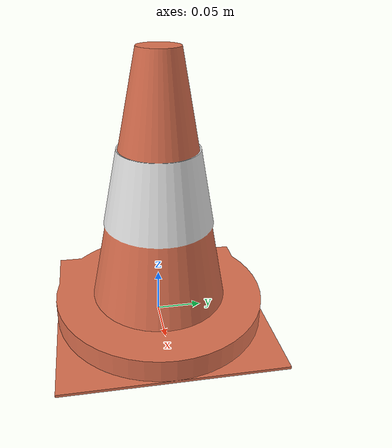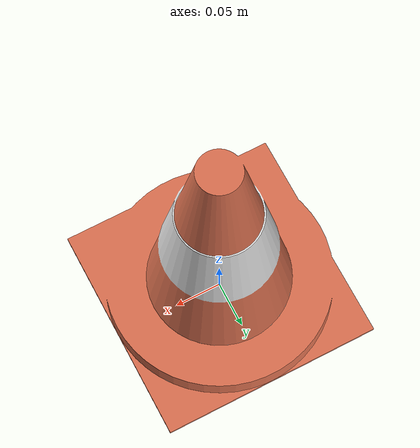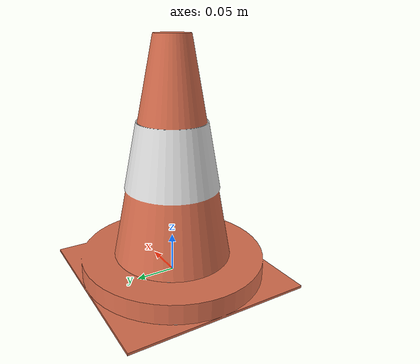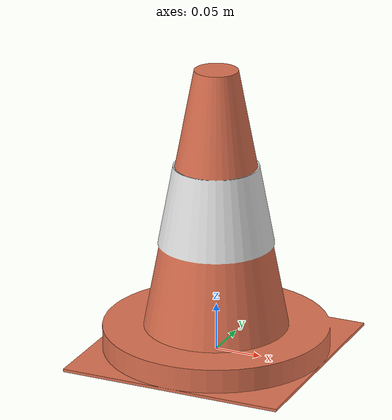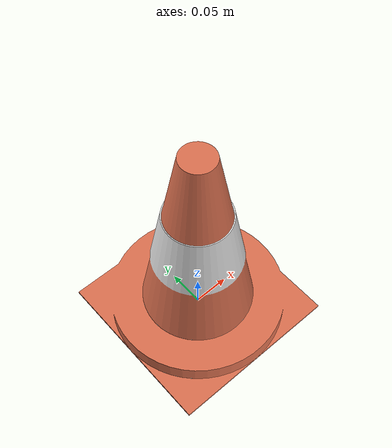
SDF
<?xml version="1.0" ?>
<sdf version="1.5">
  <model name="orange_cone">
    <link name="link">
      <inertial>
        <pose>0 0 0.028 0 0 0</pose>
        <mass>0.390</mass>
        <inertia>
          <ixx>0.0035</ixx>
          <ixy>0</ixy>
          <ixz>0</ixz>
          <iyy>0.0035</iyy>
          <iyz>0</iyz>
          <izz>0.0017</izz>
        </inertia>
      </inertial>
      <collision name="collision">
        <pose>0 0 0.028 0 0 0</pose>
        <geometry>
          <mesh>
            <uri>model://orange_cone/meshes/orange_cone.dae</uri>
          </mesh>
        </geometry>
        <surface>
          <friction>
            <ode>
              <mu>1.0</mu>
              <mu2>1.0</mu2>
            </ode>
          </friction>
          <contact>
            <ode>
              <kp>10000000.0</kp>
              <kd>1.0</kd>
              <min_depth>0.001</min_depth>
              <max_vel>0.1</max_vel>
            </ode>
          </contact>
        </surface>
      </collision>
      <visual name="visual">
        <pose>0.0 0.0 0.028 0 0 0</pose>
        <geometry>
          <mesh>
            <uri>model://orange_cone/meshes/orange_cone.dae</uri>
          </mesh>
        </geometry>
      </visual>
    </link>
  </model>
</sdf>
